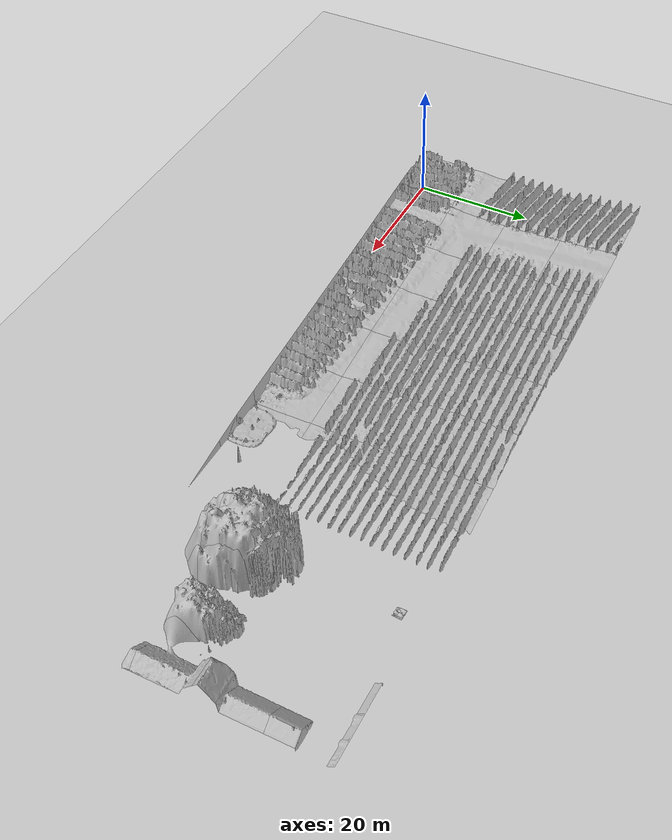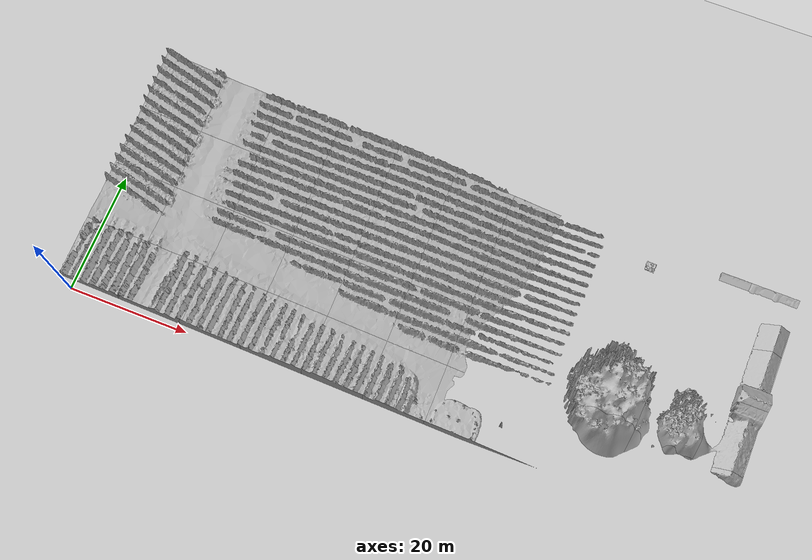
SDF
<?xml version="1.0" ?>
<sdf version="1.10">
    <world name="vineyard">
        <physics name="1ms" type="ignored">
            <max_step_size>0.001</max_step_size>
            <real_time_factor>1.0</real_time_factor>
        </physics>
        <plugin filename="gz-sim-physics-system" name="gz::sim::systems::Physics">
        </plugin>
        <plugin filename="gz-sim-user-commands-system" name="gz::sim::systems::UserCommands">
        </plugin>
        <plugin filename="gz-sim-scene-broadcaster-system" name="gz::sim::systems::SceneBroadcaster">
        </plugin>
        <plugin filename="gz-sim-contact-system" name="gz::sim::systems::Contact">
        </plugin>
        <scene>
            <ambient>0.6 0.6 0.6 1.0</ambient>
            <background>0.9 0.9 1.0 1.0</background>
        </scene>
        <light type="directional" name="sun">
            <cast_shadows>true</cast_shadows>
            <pose>0 0 10 0 0 0</pose>
            <diffuse>1.0 1.0 0.95 1.0</diffuse>
            <specular>0.5 0.5 0.45 1.0</specular>
            <attenuation>
                <range>1000</range>
                <constant>0.9</constant>
                <linear>0.01</linear>
                <quadratic>0.001</quadratic>
            </attenuation>
            <direction>0 -1 -1</direction>
        </light>
        <spherical_coordinates>
            <surface_model>EARTH_WGS84</surface_model>
            <world_frame_orientation>ENU</world_frame_orientation>
            <latitude_deg>49.04254</latitude_deg>
            <longitude_deg>3.941031</longitude_deg>
            <elevation>0</elevation>
            <heading_deg>0</heading_deg>
        </spherical_coordinates>
        <model name="ground_plane">
            <static>1</static>
            <link name="link">
                <collision name="collision">
                    <geometry>
                        <plane>
                            <normal>0 0 1</normal>
                            <size>100 100</size>
                        </plane>
                    </geometry>
                    <max_contacts>10</max_contacts>
                </collision>
                <visual name="visual">
                    <geometry>
                        <plane>
                            <normal>0 0 1</normal>
                            <size>100 100</size>
                        </plane>
                    </geometry>
                    <material>
                        <ambient>0.8 0.8 0.8 1</ambient>
                        <diffuse>0.8 0.8 0.8 1</diffuse>
                        <specular>0.8 0.8 0.8 1</specular>
                    </material>
                </visual>
            </link>
        </model>
        <include>
            <uri>model://map_0_0</uri>
            <pose>0 0 0 0 0 0</pose>
        </include>
        <include>
            <uri>model://map_10_10</uri>
            <pose>10 10 0 0 0 0</pose>
        </include>
        <include>
            <uri>model://map_10_30</uri>
            <pose>30 10 0 0 0 0</pose>
        </include>
        <include>
            <uri>model://map_20_80</uri>
            <pose>80 20 0 0 0 0</pose>
        </include>
        <include>
            <uri>model://map_30_0</uri>
            <pose>0 30 0 0 0 0</pose>
        </include>
        <include>
            <uri>model://map_30_70</uri>
            <pose>70 30 0 0 0 0</pose>
        </include>
        <include>
            <uri>model://map_0_30</uri>
            <pose>30 0 0 0 0 0</pose>
        </include>
        <include>
            <uri>model://map_0_40</uri>
            <pose>40 0 0 0 0 0</pose>
        </include>
        <include>
            <uri>model://map_0_50</uri>
            <pose>50 0 0 0 0 0</pose>
        </include>
        <include>
            <uri>model://map_0_60</uri>
            <pose>60 0 0 0 0 0</pose>
        </include>
        <include>
            <uri>model://map_0_70</uri>
            <pose>70 0 0 0 0 0</pose>
        </include>
        <include>
            <uri>model://map_0_80</uri>
            <pose>80 0 0 0 0 0</pose>
        </include>
        <include>
            <uri>model://map_0_90</uri>
            <pose>90 0 0 0 0 0</pose>
        </include>
        <include>
            <uri>model://map_0_100</uri>
            <pose>100 0 0 0 0 0</pose>
        </include>
        <include>
            <uri>model://map_20_20</uri>
            <pose>20 20 0 0 0 0</pose>
        </include>
        <include>
            <uri>model://map_10_50</uri>
            <pose>50 10 0 0 0 0</pose>
        </include>
        <include>
            <uri>model://map_30_60</uri>
            <pose>60 30 0 0 0 0</pose>
        </include>
        <include>
            <uri>model://map_30_100</uri>
            <pose>100 30 0 0 0 0</pose>
        </include>
        <include>
            <uri>model://map_30_20</uri>
            <pose>20 30 0 0 0 0</pose>
        </include>
        <include>
            <uri>model://map_20_70</uri>
            <pose>70 20 0 0 0 0</pose>
        </include>
        <include>
            <uri>model://map_10_80</uri>
            <pose>80 10 0 0 0 0</pose>
        </include>
        <include>
            <uri>model://map_30_30</uri>
            <pose>30 30 0 0 0 0</pose>
        </include>
        <include>
            <uri>model://map_10_20</uri>
            <pose>20 10 0 0 0 0</pose>
        </include>
        <include>
            <uri>model://map_20_50</uri>
            <pose>50 20 0 0 0 0</pose>
        </include>
        <include>
            <uri>model://map_30_50</uri>
            <pose>50 30 0 0 0 0</pose>
        </include>
        <include>
            <uri>model://map_20_0</uri>
            <pose>0 20 0 0 0 0</pose>
        </include>
        <include>
            <uri>model://map_30_40</uri>
            <pose>40 30 0 0 0 0</pose>
        </include>
        <include>
            <uri>model://map_20_30</uri>
            <pose>30 20 0 0 0 0</pose>
        </include>
        <include>
            <uri>model://map_20_60</uri>
            <pose>60 20 0 0 0 0</pose>
        </include>
        <include>
            <uri>model://map_20_10</uri>
            <pose>10 20 0 0 0 0</pose>
        </include>
        <include>
            <uri>model://map_30_10</uri>
            <pose>10 30 0 0 0 0</pose>
        </include>
        <include>
            <uri>model://map_30_80</uri>
            <pose>80 30 0 0 0 0</pose>
        </include>
        <include>
            <uri>model://map_20_100</uri>
            <pose>100 20 0 0 0 0</pose>
        </include>
        <include>
            <uri>model://map_20_40</uri>
            <pose>40 20 0 0 0 0</pose>
        </include>
        <include>
            <uri>model://map_30_90</uri>
            <pose>90 30 0 0 0 0</pose>
        </include>
        <include>
            <uri>model://map_0_10</uri>
            <pose>10 0 0 0 0 0</pose>
        </include>
        <include>
            <uri>model://map_0_20</uri>
            <pose>20 0 0 0 0 0</pose>
        </include>
        <include>
            <uri>model://map_10_40</uri>
            <pose>40 10 0 0 0 0</pose>
        </include>
        <include>
            <uri>model://map_10_0</uri>
            <pose>0 10 0 0 0 0</pose>
        </include>
        <include>
            <uri>model://map_10_60</uri>
            <pose>60 10 0 0 0 0</pose>
        </include>
        <include>
            <uri>model://map_10_70</uri>
            <pose>70 10 0 0 0 0</pose>
        </include>
        <include>
            <uri>model://map_10_100</uri>
            <pose>100 10 0 0 0 0</pose>
        </include>
        <include>
            <uri>model://map_20_90</uri>
            <pose>90 20 0 0 0 0</pose>
        </include>
        <include>
            <uri>model://map_10_90</uri>
            <pose>90 10 0 0 0 0</pose>
        </include>
    </world>
</sdf>

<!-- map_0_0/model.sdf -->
<sdf version="1.10">
    <model name="map_0_0">
        <link name="map_0_0_link">
            <visual name="map_0_0_visual">
                <geometry>
                    <mesh>
                        <uri>meshes/visual/map_0_0.obj</uri>
                    </mesh>
                </geometry>
            </visual>
            <collision name="map_0_0_collision">
                <surface>
                    <friction>
                        <ode>
                            <mu>2.316343837943928</mu>
                            <mu2>2.316343837943928</mu2>
                        </ode>
                        <bullet>
                            <friction>2.316343837943928</friction>
                            <friction2>2.316343837943928</friction2>
                        </bullet>
                    </friction>
                </surface>
                <geometry>
                    <mesh>
                        <uri>meshes/visual/map_0_0.obj</uri>
                    </mesh>
                </geometry>
            </collision>
        </link>
        <static>True</static>
    </model>
</sdf>

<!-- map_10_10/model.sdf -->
<sdf version="1.10">
    <model name="map_10_10">
        <link name="map_10_10_link">
            <visual name="map_10_10_visual">
                <geometry>
                    <mesh>
                        <uri>meshes/visual/map_10_10.obj</uri>
                    </mesh>
                </geometry>
            </visual>
            <collision name="map_10_10_collision">
                <surface>
                    <friction>
                        <ode>
                            <mu>2.316343837943928</mu>
                            <mu2>2.316343837943928</mu2>
                        </ode>
                        <bullet>
                            <friction>2.316343837943928</friction>
                            <friction2>2.316343837943928</friction2>
                        </bullet>
                    </friction>
                </surface>
                <geometry>
                    <mesh>
                        <uri>meshes/visual/map_10_10.obj</uri>
                    </mesh>
                </geometry>
            </collision>
        </link>
        <static>True</static>
    </model>
</sdf>

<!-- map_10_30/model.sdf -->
<sdf version="1.10">
    <model name="map_10_30">
        <link name="map_10_30_link">
            <visual name="map_10_30_visual">
                <geometry>
                    <mesh>
                        <uri>meshes/visual/map_10_30.obj</uri>
                    </mesh>
                </geometry>
            </visual>
            <collision name="map_10_30_collision">
                <surface>
                    <friction>
                        <ode>
                            <mu>2.316343837943928</mu>
                            <mu2>2.316343837943928</mu2>
                        </ode>
                        <bullet>
                            <friction>2.316343837943928</friction>
                            <friction2>2.316343837943928</friction2>
                        </bullet>
                    </friction>
                </surface>
                <geometry>
                    <mesh>
                        <uri>meshes/visual/map_10_30.obj</uri>
                    </mesh>
                </geometry>
            </collision>
        </link>
        <static>True</static>
    </model>
</sdf>

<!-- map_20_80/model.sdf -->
<sdf version="1.10">
    <model name="map_20_80">
        <link name="map_20_80_link">
            <visual name="map_20_80_visual">
                <geometry>
                    <mesh>
                        <uri>meshes/visual/map_20_80.obj</uri>
                    </mesh>
                </geometry>
            </visual>
            <collision name="map_20_80_collision">
                <surface>
                    <friction>
                        <ode>
                            <mu>2.316343837943928</mu>
                            <mu2>2.316343837943928</mu2>
                        </ode>
                        <bullet>
                            <friction>2.316343837943928</friction>
                            <friction2>2.316343837943928</friction2>
                        </bullet>
                    </friction>
                </surface>
                <geometry>
                    <mesh>
                        <uri>meshes/visual/map_20_80.obj</uri>
                    </mesh>
                </geometry>
            </collision>
        </link>
        <static>True</static>
    </model>
</sdf>

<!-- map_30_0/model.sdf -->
<sdf version="1.10">
    <model name="map_30_0">
        <link name="map_30_0_link">
            <visual name="map_30_0_visual">
                <geometry>
                    <mesh>
                        <uri>meshes/visual/map_30_0.obj</uri>
                    </mesh>
                </geometry>
            </visual>
            <collision name="map_30_0_collision">
                <surface>
                    <friction>
                        <ode>
                            <mu>2.316343837943928</mu>
                            <mu2>2.316343837943928</mu2>
                        </ode>
                        <bullet>
                            <friction>2.316343837943928</friction>
                            <friction2>2.316343837943928</friction2>
                        </bullet>
                    </friction>
                </surface>
                <geometry>
                    <mesh>
                        <uri>meshes/visual/map_30_0.obj</uri>
                    </mesh>
                </geometry>
            </collision>
        </link>
        <static>True</static>
    </model>
</sdf>

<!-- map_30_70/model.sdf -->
<sdf version="1.10">
    <model name="map_30_70">
        <link name="map_30_70_link">
            <visual name="map_30_70_visual">
                <geometry>
                    <mesh>
                        <uri>meshes/visual/map_30_70.obj</uri>
                    </mesh>
                </geometry>
            </visual>
            <collision name="map_30_70_collision">
                <surface>
                    <friction>
                        <ode>
                            <mu>2.316343837943928</mu>
                            <mu2>2.316343837943928</mu2>
                        </ode>
                        <bullet>
                            <friction>2.316343837943928</friction>
                            <friction2>2.316343837943928</friction2>
                        </bullet>
                    </friction>
                </surface>
                <geometry>
                    <mesh>
                        <uri>meshes/visual/map_30_70.obj</uri>
                    </mesh>
                </geometry>
            </collision>
        </link>
        <static>True</static>
    </model>
</sdf>

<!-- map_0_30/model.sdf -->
<sdf version="1.10">
    <model name="map_0_30">
        <link name="map_0_30_link">
            <visual name="map_0_30_visual">
                <geometry>
                    <mesh>
                        <uri>meshes/visual/map_0_30.obj</uri>
                    </mesh>
                </geometry>
            </visual>
            <collision name="map_0_30_collision">
                <surface>
                    <friction>
                        <ode>
                            <mu>2.316343837943928</mu>
                            <mu2>2.316343837943928</mu2>
                        </ode>
                        <bullet>
                            <friction>2.316343837943928</friction>
                            <friction2>2.316343837943928</friction2>
                        </bullet>
                    </friction>
                </surface>
                <geometry>
                    <mesh>
                        <uri>meshes/visual/map_0_30.obj</uri>
                    </mesh>
                </geometry>
            </collision>
        </link>
        <static>True</static>
    </model>
</sdf>

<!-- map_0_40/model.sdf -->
<sdf version="1.10">
    <model name="map_0_40">
        <link name="map_0_40_link">
            <visual name="map_0_40_visual">
                <geometry>
                    <mesh>
                        <uri>meshes/visual/map_0_40.obj</uri>
                    </mesh>
                </geometry>
            </visual>
            <collision name="map_0_40_collision">
                <surface>
                    <friction>
                        <ode>
                            <mu>2.316343837943928</mu>
                            <mu2>2.316343837943928</mu2>
                        </ode>
                        <bullet>
                            <friction>2.316343837943928</friction>
                            <friction2>2.316343837943928</friction2>
                        </bullet>
                    </friction>
                </surface>
                <geometry>
                    <mesh>
                        <uri>meshes/visual/map_0_40.obj</uri>
                    </mesh>
                </geometry>
            </collision>
        </link>
        <static>True</static>
    </model>
</sdf>

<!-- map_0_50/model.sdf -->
<sdf version="1.10">
    <model name="map_0_50">
        <link name="map_0_50_link">
            <visual name="map_0_50_visual">
                <geometry>
                    <mesh>
                        <uri>meshes/visual/map_0_50.obj</uri>
                    </mesh>
                </geometry>
            </visual>
            <collision name="map_0_50_collision">
                <surface>
                    <friction>
                        <ode>
                            <mu>2.316343837943928</mu>
                            <mu2>2.316343837943928</mu2>
                        </ode>
                        <bullet>
                            <friction>2.316343837943928</friction>
                            <friction2>2.316343837943928</friction2>
                        </bullet>
                    </friction>
                </surface>
                <geometry>
                    <mesh>
                        <uri>meshes/visual/map_0_50.obj</uri>
                    </mesh>
                </geometry>
            </collision>
        </link>
        <static>True</static>
    </model>
</sdf>

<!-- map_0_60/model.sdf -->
<sdf version="1.10">
    <model name="map_0_60">
        <link name="map_0_60_link">
            <visual name="map_0_60_visual">
                <geometry>
                    <mesh>
                        <uri>meshes/visual/map_0_60.obj</uri>
                    </mesh>
                </geometry>
            </visual>
            <collision name="map_0_60_collision">
                <surface>
                    <friction>
                        <ode>
                            <mu>2.316343837943928</mu>
                            <mu2>2.316343837943928</mu2>
                        </ode>
                        <bullet>
                            <friction>2.316343837943928</friction>
                            <friction2>2.316343837943928</friction2>
                        </bullet>
                    </friction>
                </surface>
                <geometry>
                    <mesh>
                        <uri>meshes/visual/map_0_60.obj</uri>
                    </mesh>
                </geometry>
            </collision>
        </link>
        <static>True</static>
    </model>
</sdf>

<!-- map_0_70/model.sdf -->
<sdf version="1.10">
    <model name="map_0_70">
        <link name="map_0_70_link">
            <visual name="map_0_70_visual">
                <geometry>
                    <mesh>
                        <uri>meshes/visual/map_0_70.obj</uri>
                    </mesh>
                </geometry>
            </visual>
            <collision name="map_0_70_collision">
                <surface>
                    <friction>
                        <ode>
                            <mu>2.316343837943928</mu>
                            <mu2>2.316343837943928</mu2>
                        </ode>
                        <bullet>
                            <friction>2.316343837943928</friction>
                            <friction2>2.316343837943928</friction2>
                        </bullet>
                    </friction>
                </surface>
                <geometry>
                    <mesh>
                        <uri>meshes/visual/map_0_70.obj</uri>
                    </mesh>
                </geometry>
            </collision>
        </link>
        <static>True</static>
    </model>
</sdf>

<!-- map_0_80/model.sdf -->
<sdf version="1.10">
    <model name="map_0_80">
        <link name="map_0_80_link">
            <visual name="map_0_80_visual">
                <geometry>
                    <mesh>
                        <uri>meshes/visual/map_0_80.obj</uri>
                    </mesh>
                </geometry>
            </visual>
            <collision name="map_0_80_collision">
                <surface>
                    <friction>
                        <ode>
                            <mu>2.316343837943928</mu>
                            <mu2>2.316343837943928</mu2>
                        </ode>
                        <bullet>
                            <friction>2.316343837943928</friction>
                            <friction2>2.316343837943928</friction2>
                        </bullet>
                    </friction>
                </surface>
                <geometry>
                    <mesh>
                        <uri>meshes/visual/map_0_80.obj</uri>
                    </mesh>
                </geometry>
            </collision>
        </link>
        <static>True</static>
    </model>
</sdf>

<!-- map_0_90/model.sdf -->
<sdf version="1.10">
    <model name="map_0_90">
        <link name="map_0_90_link">
            <visual name="map_0_90_visual">
                <geometry>
                    <mesh>
                        <uri>meshes/visual/map_0_90.obj</uri>
                    </mesh>
                </geometry>
            </visual>
            <collision name="map_0_90_collision">
                <surface>
                    <friction>
                        <ode>
                            <mu>2.316343837943928</mu>
                            <mu2>2.316343837943928</mu2>
                        </ode>
                        <bullet>
                            <friction>2.316343837943928</friction>
                            <friction2>2.316343837943928</friction2>
                        </bullet>
                    </friction>
                </surface>
                <geometry>
                    <mesh>
                        <uri>meshes/visual/map_0_90.obj</uri>
                    </mesh>
                </geometry>
            </collision>
        </link>
        <static>True</static>
    </model>
</sdf>

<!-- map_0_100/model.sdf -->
<sdf version="1.10">
    <model name="map_0_100">
        <link name="map_0_100_link">
            <visual name="map_0_100_visual">
                <geometry>
                    <mesh>
                        <uri>meshes/visual/map_0_100.obj</uri>
                    </mesh>
                </geometry>
            </visual>
            <collision name="map_0_100_collision">
                <surface>
                    <friction>
                        <ode>
                            <mu>2.316343837943928</mu>
                            <mu2>2.316343837943928</mu2>
                        </ode>
                        <bullet>
                            <friction>2.316343837943928</friction>
                            <friction2>2.316343837943928</friction2>
                        </bullet>
                    </friction>
                </surface>
                <geometry>
                    <mesh>
                        <uri>meshes/visual/map_0_100.obj</uri>
                    </mesh>
                </geometry>
            </collision>
        </link>
        <static>True</static>
    </model>
</sdf>

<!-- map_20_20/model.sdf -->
<sdf version="1.10">
    <model name="map_20_20">
        <link name="map_20_20_link">
            <visual name="map_20_20_visual">
                <geometry>
                    <mesh>
                        <uri>meshes/visual/map_20_20.obj</uri>
                    </mesh>
                </geometry>
            </visual>
            <collision name="map_20_20_collision">
                <surface>
                    <friction>
                        <ode>
                            <mu>2.316343837943928</mu>
                            <mu2>2.316343837943928</mu2>
                        </ode>
                        <bullet>
                            <friction>2.316343837943928</friction>
                            <friction2>2.316343837943928</friction2>
                        </bullet>
                    </friction>
                </surface>
                <geometry>
                    <mesh>
                        <uri>meshes/visual/map_20_20.obj</uri>
                    </mesh>
                </geometry>
            </collision>
        </link>
        <static>True</static>
    </model>
</sdf>

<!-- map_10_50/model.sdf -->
<sdf version="1.10">
    <model name="map_10_50">
        <link name="map_10_50_link">
            <visual name="map_10_50_visual">
                <geometry>
                    <mesh>
                        <uri>meshes/visual/map_10_50.obj</uri>
                    </mesh>
                </geometry>
            </visual>
            <collision name="map_10_50_collision">
                <surface>
                    <friction>
                        <ode>
                            <mu>2.316343837943928</mu>
                            <mu2>2.316343837943928</mu2>
                        </ode>
                        <bullet>
                            <friction>2.316343837943928</friction>
                            <friction2>2.316343837943928</friction2>
                        </bullet>
                    </friction>
                </surface>
                <geometry>
                    <mesh>
                        <uri>meshes/visual/map_10_50.obj</uri>
                    </mesh>
                </geometry>
            </collision>
        </link>
        <static>True</static>
    </model>
</sdf>

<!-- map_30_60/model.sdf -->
<sdf version="1.10">
    <model name="map_30_60">
        <link name="map_30_60_link">
            <visual name="map_30_60_visual">
                <geometry>
                    <mesh>
                        <uri>meshes/visual/map_30_60.obj</uri>
                    </mesh>
                </geometry>
            </visual>
            <collision name="map_30_60_collision">
                <surface>
                    <friction>
                        <ode>
                            <mu>2.316343837943928</mu>
                            <mu2>2.316343837943928</mu2>
                        </ode>
                        <bullet>
                            <friction>2.316343837943928</friction>
                            <friction2>2.316343837943928</friction2>
                        </bullet>
                    </friction>
                </surface>
                <geometry>
                    <mesh>
                        <uri>meshes/visual/map_30_60.obj</uri>
                    </mesh>
                </geometry>
            </collision>
        </link>
        <static>True</static>
    </model>
</sdf>

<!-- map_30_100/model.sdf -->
<sdf version="1.10">
    <model name="map_30_100">
        <link name="map_30_100_link">
            <visual name="map_30_100_visual">
                <geometry>
                    <mesh>
                        <uri>meshes/visual/map_30_100.obj</uri>
                    </mesh>
                </geometry>
            </visual>
            <collision name="map_30_100_collision">
                <surface>
                    <friction>
                        <ode>
                            <mu>2.316343837943928</mu>
                            <mu2>2.316343837943928</mu2>
                        </ode>
                        <bullet>
                            <friction>2.316343837943928</friction>
                            <friction2>2.316343837943928</friction2>
                        </bullet>
                    </friction>
                </surface>
                <geometry>
                    <mesh>
                        <uri>meshes/visual/map_30_100.obj</uri>
                    </mesh>
                </geometry>
            </collision>
        </link>
        <static>True</static>
    </model>
</sdf>

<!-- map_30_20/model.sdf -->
<sdf version="1.10">
    <model name="map_30_20">
        <link name="map_30_20_link">
            <visual name="map_30_20_visual">
                <geometry>
                    <mesh>
                        <uri>meshes/visual/map_30_20.obj</uri>
                    </mesh>
                </geometry>
            </visual>
            <collision name="map_30_20_collision">
                <surface>
                    <friction>
                        <ode>
                            <mu>2.316343837943928</mu>
                            <mu2>2.316343837943928</mu2>
                        </ode>
                        <bullet>
                            <friction>2.316343837943928</friction>
                            <friction2>2.316343837943928</friction2>
                        </bullet>
                    </friction>
                </surface>
                <geometry>
                    <mesh>
                        <uri>meshes/visual/map_30_20.obj</uri>
                    </mesh>
                </geometry>
            </collision>
        </link>
        <static>True</static>
    </model>
</sdf>

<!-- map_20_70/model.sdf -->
<sdf version="1.10">
    <model name="map_20_70">
        <link name="map_20_70_link">
            <visual name="map_20_70_visual">
                <geometry>
                    <mesh>
                        <uri>meshes/visual/map_20_70.obj</uri>
                    </mesh>
                </geometry>
            </visual>
            <collision name="map_20_70_collision">
                <surface>
                    <friction>
                        <ode>
                            <mu>2.316343837943928</mu>
                            <mu2>2.316343837943928</mu2>
                        </ode>
                        <bullet>
                            <friction>2.316343837943928</friction>
                            <friction2>2.316343837943928</friction2>
                        </bullet>
                    </friction>
                </surface>
                <geometry>
                    <mesh>
                        <uri>meshes/visual/map_20_70.obj</uri>
                    </mesh>
                </geometry>
            </collision>
        </link>
        <static>True</static>
    </model>
</sdf>

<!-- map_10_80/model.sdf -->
<sdf version="1.10">
    <model name="map_10_80">
        <link name="map_10_80_link">
            <visual name="map_10_80_visual">
                <geometry>
                    <mesh>
                        <uri>meshes/visual/map_10_80.obj</uri>
                    </mesh>
                </geometry>
            </visual>
            <collision name="map_10_80_collision">
                <surface>
                    <friction>
                        <ode>
                            <mu>2.316343837943928</mu>
                            <mu2>2.316343837943928</mu2>
                        </ode>
                        <bullet>
                            <friction>2.316343837943928</friction>
                            <friction2>2.316343837943928</friction2>
                        </bullet>
                    </friction>
                </surface>
                <geometry>
                    <mesh>
                        <uri>meshes/visual/map_10_80.obj</uri>
                    </mesh>
                </geometry>
            </collision>
        </link>
        <static>True</static>
    </model>
</sdf>

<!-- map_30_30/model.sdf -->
<sdf version="1.10">
    <model name="map_30_30">
        <link name="map_30_30_link">
            <visual name="map_30_30_visual">
                <geometry>
                    <mesh>
                        <uri>meshes/visual/map_30_30.obj</uri>
                    </mesh>
                </geometry>
            </visual>
            <collision name="map_30_30_collision">
                <surface>
                    <friction>
                        <ode>
                            <mu>2.316343837943928</mu>
                            <mu2>2.316343837943928</mu2>
                        </ode>
                        <bullet>
                            <friction>2.316343837943928</friction>
                            <friction2>2.316343837943928</friction2>
                        </bullet>
                    </friction>
                </surface>
                <geometry>
                    <mesh>
                        <uri>meshes/visual/map_30_30.obj</uri>
                    </mesh>
                </geometry>
            </collision>
        </link>
        <static>True</static>
    </model>
</sdf>

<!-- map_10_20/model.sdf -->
<sdf version="1.10">
    <model name="map_10_20">
        <link name="map_10_20_link">
            <visual name="map_10_20_visual">
                <geometry>
                    <mesh>
                        <uri>meshes/visual/map_10_20.obj</uri>
                    </mesh>
                </geometry>
            </visual>
            <collision name="map_10_20_collision">
                <surface>
                    <friction>
                        <ode>
                            <mu>2.316343837943928</mu>
                            <mu2>2.316343837943928</mu2>
                        </ode>
                        <bullet>
                            <friction>2.316343837943928</friction>
                            <friction2>2.316343837943928</friction2>
                        </bullet>
                    </friction>
                </surface>
                <geometry>
                    <mesh>
                        <uri>meshes/visual/map_10_20.obj</uri>
                    </mesh>
                </geometry>
            </collision>
        </link>
        <static>True</static>
    </model>
</sdf>

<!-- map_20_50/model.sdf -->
<sdf version="1.10">
    <model name="map_20_50">
        <link name="map_20_50_link">
            <visual name="map_20_50_visual">
                <geometry>
                    <mesh>
                        <uri>meshes/visual/map_20_50.obj</uri>
                    </mesh>
                </geometry>
            </visual>
            <collision name="map_20_50_collision">
                <surface>
                    <friction>
                        <ode>
                            <mu>2.316343837943928</mu>
                            <mu2>2.316343837943928</mu2>
                        </ode>
                        <bullet>
                            <friction>2.316343837943928</friction>
                            <friction2>2.316343837943928</friction2>
                        </bullet>
                    </friction>
                </surface>
                <geometry>
                    <mesh>
                        <uri>meshes/visual/map_20_50.obj</uri>
                    </mesh>
                </geometry>
            </collision>
        </link>
        <static>True</static>
    </model>
</sdf>

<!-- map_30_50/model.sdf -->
<sdf version="1.10">
    <model name="map_30_50">
        <link name="map_30_50_link">
            <visual name="map_30_50_visual">
                <geometry>
                    <mesh>
                        <uri>meshes/visual/map_30_50.obj</uri>
                    </mesh>
                </geometry>
            </visual>
            <collision name="map_30_50_collision">
                <surface>
                    <friction>
                        <ode>
                            <mu>2.316343837943928</mu>
                            <mu2>2.316343837943928</mu2>
                        </ode>
                        <bullet>
                            <friction>2.316343837943928</friction>
                            <friction2>2.316343837943928</friction2>
                        </bullet>
                    </friction>
                </surface>
                <geometry>
                    <mesh>
                        <uri>meshes/visual/map_30_50.obj</uri>
                    </mesh>
                </geometry>
            </collision>
        </link>
        <static>True</static>
    </model>
</sdf>

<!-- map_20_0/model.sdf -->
<sdf version="1.10">
    <model name="map_20_0">
        <link name="map_20_0_link">
            <visual name="map_20_0_visual">
                <geometry>
                    <mesh>
                        <uri>meshes/visual/map_20_0.obj</uri>
                    </mesh>
                </geometry>
            </visual>
            <collision name="map_20_0_collision">
                <surface>
                    <friction>
                        <ode>
                            <mu>2.316343837943928</mu>
                            <mu2>2.316343837943928</mu2>
                        </ode>
                        <bullet>
                            <friction>2.316343837943928</friction>
                            <friction2>2.316343837943928</friction2>
                        </bullet>
                    </friction>
                </surface>
                <geometry>
                    <mesh>
                        <uri>meshes/visual/map_20_0.obj</uri>
                    </mesh>
                </geometry>
            </collision>
        </link>
        <static>True</static>
    </model>
</sdf>

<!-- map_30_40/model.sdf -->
<sdf version="1.10">
    <model name="map_30_40">
        <link name="map_30_40_link">
            <visual name="map_30_40_visual">
                <geometry>
                    <mesh>
                        <uri>meshes/visual/map_30_40.obj</uri>
                    </mesh>
                </geometry>
            </visual>
            <collision name="map_30_40_collision">
                <surface>
                    <friction>
                        <ode>
                            <mu>2.316343837943928</mu>
                            <mu2>2.316343837943928</mu2>
                        </ode>
                        <bullet>
                            <friction>2.316343837943928</friction>
                            <friction2>2.316343837943928</friction2>
                        </bullet>
                    </friction>
                </surface>
                <geometry>
                    <mesh>
                        <uri>meshes/visual/map_30_40.obj</uri>
                    </mesh>
                </geometry>
            </collision>
        </link>
        <static>True</static>
    </model>
</sdf>

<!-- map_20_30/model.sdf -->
<sdf version="1.10">
    <model name="map_20_30">
        <link name="map_20_30_link">
            <visual name="map_20_30_visual">
                <geometry>
                    <mesh>
                        <uri>meshes/visual/map_20_30.obj</uri>
                    </mesh>
                </geometry>
            </visual>
            <collision name="map_20_30_collision">
                <surface>
                    <friction>
                        <ode>
                            <mu>2.316343837943928</mu>
                            <mu2>2.316343837943928</mu2>
                        </ode>
                        <bullet>
                            <friction>2.316343837943928</friction>
                            <friction2>2.316343837943928</friction2>
                        </bullet>
                    </friction>
                </surface>
                <geometry>
                    <mesh>
                        <uri>meshes/visual/map_20_30.obj</uri>
                    </mesh>
                </geometry>
            </collision>
        </link>
        <static>True</static>
    </model>
</sdf>

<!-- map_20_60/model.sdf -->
<sdf version="1.10">
    <model name="map_20_60">
        <link name="map_20_60_link">
            <visual name="map_20_60_visual">
                <geometry>
                    <mesh>
                        <uri>meshes/visual/map_20_60.obj</uri>
                    </mesh>
                </geometry>
            </visual>
            <collision name="map_20_60_collision">
                <surface>
                    <friction>
                        <ode>
                            <mu>2.316343837943928</mu>
                            <mu2>2.316343837943928</mu2>
                        </ode>
                        <bullet>
                            <friction>2.316343837943928</friction>
                            <friction2>2.316343837943928</friction2>
                        </bullet>
                    </friction>
                </surface>
                <geometry>
                    <mesh>
                        <uri>meshes/visual/map_20_60.obj</uri>
                    </mesh>
                </geometry>
            </collision>
        </link>
        <static>True</static>
    </model>
</sdf>

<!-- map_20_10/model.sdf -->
<sdf version="1.10">
    <model name="map_20_10">
        <link name="map_20_10_link">
            <visual name="map_20_10_visual">
                <geometry>
                    <mesh>
                        <uri>meshes/visual/map_20_10.obj</uri>
                    </mesh>
                </geometry>
            </visual>
            <collision name="map_20_10_collision">
                <surface>
                    <friction>
                        <ode>
                            <mu>2.316343837943928</mu>
                            <mu2>2.316343837943928</mu2>
                        </ode>
                        <bullet>
                            <friction>2.316343837943928</friction>
                            <friction2>2.316343837943928</friction2>
                        </bullet>
                    </friction>
                </surface>
                <geometry>
                    <mesh>
                        <uri>meshes/visual/map_20_10.obj</uri>
                    </mesh>
                </geometry>
            </collision>
        </link>
        <static>True</static>
    </model>
</sdf>

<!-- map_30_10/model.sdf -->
<sdf version="1.10">
    <model name="map_30_10">
        <link name="map_30_10_link">
            <visual name="map_30_10_visual">
                <geometry>
                    <mesh>
                        <uri>meshes/visual/map_30_10.obj</uri>
                    </mesh>
                </geometry>
            </visual>
            <collision name="map_30_10_collision">
                <surface>
                    <friction>
                        <ode>
                            <mu>2.316343837943928</mu>
                            <mu2>2.316343837943928</mu2>
                        </ode>
                        <bullet>
                            <friction>2.316343837943928</friction>
                            <friction2>2.316343837943928</friction2>
                        </bullet>
                    </friction>
                </surface>
                <geometry>
                    <mesh>
                        <uri>meshes/visual/map_30_10.obj</uri>
                    </mesh>
                </geometry>
            </collision>
        </link>
        <static>True</static>
    </model>
</sdf>

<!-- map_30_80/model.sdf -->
<sdf version="1.10">
    <model name="map_30_80">
        <link name="map_30_80_link">
            <visual name="map_30_80_visual">
                <geometry>
                    <mesh>
                        <uri>meshes/visual/map_30_80.obj</uri>
                    </mesh>
                </geometry>
            </visual>
            <collision name="map_30_80_collision">
                <surface>
                    <friction>
                        <ode>
                            <mu>2.316343837943928</mu>
                            <mu2>2.316343837943928</mu2>
                        </ode>
                        <bullet>
                            <friction>2.316343837943928</friction>
                            <friction2>2.316343837943928</friction2>
                        </bullet>
                    </friction>
                </surface>
                <geometry>
                    <mesh>
                        <uri>meshes/visual/map_30_80.obj</uri>
                    </mesh>
                </geometry>
            </collision>
        </link>
        <static>True</static>
    </model>
</sdf>

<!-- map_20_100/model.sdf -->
<sdf version="1.10">
    <model name="map_20_100">
        <link name="map_20_100_link">
            <visual name="map_20_100_visual">
                <geometry>
                    <mesh>
                        <uri>meshes/visual/map_20_100.obj</uri>
                    </mesh>
                </geometry>
            </visual>
            <collision name="map_20_100_collision">
                <surface>
                    <friction>
                        <ode>
                            <mu>2.316343837943928</mu>
                            <mu2>2.316343837943928</mu2>
                        </ode>
                        <bullet>
                            <friction>2.316343837943928</friction>
                            <friction2>2.316343837943928</friction2>
                        </bullet>
                    </friction>
                </surface>
                <geometry>
                    <mesh>
                        <uri>meshes/visual/map_20_100.obj</uri>
                    </mesh>
                </geometry>
            </collision>
        </link>
        <static>True</static>
    </model>
</sdf>

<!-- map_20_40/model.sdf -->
<sdf version="1.10">
    <model name="map_20_40">
        <link name="map_20_40_link">
            <visual name="map_20_40_visual">
                <geometry>
                    <mesh>
                        <uri>meshes/visual/map_20_40.obj</uri>
                    </mesh>
                </geometry>
            </visual>
            <collision name="map_20_40_collision">
                <surface>
                    <friction>
                        <ode>
                            <mu>2.316343837943928</mu>
                            <mu2>2.316343837943928</mu2>
                        </ode>
                        <bullet>
                            <friction>2.316343837943928</friction>
                            <friction2>2.316343837943928</friction2>
                        </bullet>
                    </friction>
                </surface>
                <geometry>
                    <mesh>
                        <uri>meshes/visual/map_20_40.obj</uri>
                    </mesh>
                </geometry>
            </collision>
        </link>
        <static>True</static>
    </model>
</sdf>

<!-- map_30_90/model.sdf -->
<sdf version="1.10">
    <model name="map_30_90">
        <link name="map_30_90_link">
            <visual name="map_30_90_visual">
                <geometry>
                    <mesh>
                        <uri>meshes/visual/map_30_90.obj</uri>
                    </mesh>
                </geometry>
            </visual>
            <collision name="map_30_90_collision">
                <surface>
                    <friction>
                        <ode>
                            <mu>2.316343837943928</mu>
                            <mu2>2.316343837943928</mu2>
                        </ode>
                        <bullet>
                            <friction>2.316343837943928</friction>
                            <friction2>2.316343837943928</friction2>
                        </bullet>
                    </friction>
                </surface>
                <geometry>
                    <mesh>
                        <uri>meshes/visual/map_30_90.obj</uri>
                    </mesh>
                </geometry>
            </collision>
        </link>
        <static>True</static>
    </model>
</sdf>

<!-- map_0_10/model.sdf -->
<sdf version="1.10">
    <model name="map_0_10">
        <link name="map_0_10_link">
            <visual name="map_0_10_visual">
                <geometry>
                    <mesh>
                        <uri>meshes/visual/map_0_10.obj</uri>
                    </mesh>
                </geometry>
            </visual>
            <collision name="map_0_10_collision">
                <surface>
                    <friction>
                        <ode>
                            <mu>2.316343837943928</mu>
                            <mu2>2.316343837943928</mu2>
                        </ode>
                        <bullet>
                            <friction>2.316343837943928</friction>
                            <friction2>2.316343837943928</friction2>
                        </bullet>
                    </friction>
                </surface>
                <geometry>
                    <mesh>
                        <uri>meshes/visual/map_0_10.obj</uri>
                    </mesh>
                </geometry>
            </collision>
        </link>
        <static>True</static>
    </model>
</sdf>

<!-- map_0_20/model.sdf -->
<sdf version="1.10">
    <model name="map_0_20">
        <link name="map_0_20_link">
            <visual name="map_0_20_visual">
                <geometry>
                    <mesh>
                        <uri>meshes/visual/map_0_20.obj</uri>
                    </mesh>
                </geometry>
            </visual>
            <collision name="map_0_20_collision">
                <surface>
                    <friction>
                        <ode>
                            <mu>2.316343837943928</mu>
                            <mu2>2.316343837943928</mu2>
                        </ode>
                        <bullet>
                            <friction>2.316343837943928</friction>
                            <friction2>2.316343837943928</friction2>
                        </bullet>
                    </friction>
                </surface>
                <geometry>
                    <mesh>
                        <uri>meshes/visual/map_0_20.obj</uri>
                    </mesh>
                </geometry>
            </collision>
        </link>
        <static>True</static>
    </model>
</sdf>

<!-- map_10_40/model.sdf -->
<sdf version="1.10">
    <model name="map_10_40">
        <link name="map_10_40_link">
            <visual name="map_10_40_visual">
                <geometry>
                    <mesh>
                        <uri>meshes/visual/map_10_40.obj</uri>
                    </mesh>
                </geometry>
            </visual>
            <collision name="map_10_40_collision">
                <surface>
                    <friction>
                        <ode>
                            <mu>2.316343837943928</mu>
                            <mu2>2.316343837943928</mu2>
                        </ode>
                        <bullet>
                            <friction>2.316343837943928</friction>
                            <friction2>2.316343837943928</friction2>
                        </bullet>
                    </friction>
                </surface>
                <geometry>
                    <mesh>
                        <uri>meshes/visual/map_10_40.obj</uri>
                    </mesh>
                </geometry>
            </collision>
        </link>
        <static>True</static>
    </model>
</sdf>

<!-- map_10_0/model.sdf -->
<sdf version="1.10">
    <model name="map_10_0">
        <link name="map_10_0_link">
            <visual name="map_10_0_visual">
                <geometry>
                    <mesh>
                        <uri>meshes/visual/map_10_0.obj</uri>
                    </mesh>
                </geometry>
            </visual>
            <collision name="map_10_0_collision">
                <surface>
                    <friction>
                        <ode>
                            <mu>2.316343837943928</mu>
                            <mu2>2.316343837943928</mu2>
                        </ode>
                        <bullet>
                            <friction>2.316343837943928</friction>
                            <friction2>2.316343837943928</friction2>
                        </bullet>
                    </friction>
                </surface>
                <geometry>
                    <mesh>
                        <uri>meshes/visual/map_10_0.obj</uri>
                    </mesh>
                </geometry>
            </collision>
        </link>
        <static>True</static>
    </model>
</sdf>

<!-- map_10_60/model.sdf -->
<sdf version="1.10">
    <model name="map_10_60">
        <link name="map_10_60_link">
            <visual name="map_10_60_visual">
                <geometry>
                    <mesh>
                        <uri>meshes/visual/map_10_60.obj</uri>
                    </mesh>
                </geometry>
            </visual>
            <collision name="map_10_60_collision">
                <surface>
                    <friction>
                        <ode>
                            <mu>2.316343837943928</mu>
                            <mu2>2.316343837943928</mu2>
                        </ode>
                        <bullet>
                            <friction>2.316343837943928</friction>
                            <friction2>2.316343837943928</friction2>
                        </bullet>
                    </friction>
                </surface>
                <geometry>
                    <mesh>
                        <uri>meshes/visual/map_10_60.obj</uri>
                    </mesh>
                </geometry>
            </collision>
        </link>
        <static>True</static>
    </model>
</sdf>

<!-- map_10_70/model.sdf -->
<sdf version="1.10">
    <model name="map_10_70">
        <link name="map_10_70_link">
            <visual name="map_10_70_visual">
                <geometry>
                    <mesh>
                        <uri>meshes/visual/map_10_70.obj</uri>
                    </mesh>
                </geometry>
            </visual>
            <collision name="map_10_70_collision">
                <surface>
                    <friction>
                        <ode>
                            <mu>2.316343837943928</mu>
                            <mu2>2.316343837943928</mu2>
                        </ode>
                        <bullet>
                            <friction>2.316343837943928</friction>
                            <friction2>2.316343837943928</friction2>
                        </bullet>
                    </friction>
                </surface>
                <geometry>
                    <mesh>
                        <uri>meshes/visual/map_10_70.obj</uri>
                    </mesh>
                </geometry>
            </collision>
        </link>
        <static>True</static>
    </model>
</sdf>

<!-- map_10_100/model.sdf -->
<sdf version="1.10">
    <model name="map_10_100">
        <link name="map_10_100_link">
            <visual name="map_10_100_visual">
                <geometry>
                    <mesh>
                        <uri>meshes/visual/map_10_100.obj</uri>
                    </mesh>
                </geometry>
            </visual>
            <collision name="map_10_100_collision">
                <surface>
                    <friction>
                        <ode>
                            <mu>2.316343837943928</mu>
                            <mu2>2.316343837943928</mu2>
                        </ode>
                        <bullet>
                            <friction>2.316343837943928</friction>
                            <friction2>2.316343837943928</friction2>
                        </bullet>
                    </friction>
                </surface>
                <geometry>
                    <mesh>
                        <uri>meshes/visual/map_10_100.obj</uri>
                    </mesh>
                </geometry>
            </collision>
        </link>
        <static>True</static>
    </model>
</sdf>

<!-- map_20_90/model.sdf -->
<sdf version="1.10">
    <model name="map_20_90">
        <link name="map_20_90_link">
            <visual name="map_20_90_visual">
                <geometry>
                    <mesh>
                        <uri>meshes/visual/map_20_90.obj</uri>
                    </mesh>
                </geometry>
            </visual>
            <collision name="map_20_90_collision">
                <surface>
                    <friction>
                        <ode>
                            <mu>2.316343837943928</mu>
                            <mu2>2.316343837943928</mu2>
                        </ode>
                        <bullet>
                            <friction>2.316343837943928</friction>
                            <friction2>2.316343837943928</friction2>
                        </bullet>
                    </friction>
                </surface>
                <geometry>
                    <mesh>
                        <uri>meshes/visual/map_20_90.obj</uri>
                    </mesh>
                </geometry>
            </collision>
        </link>
        <static>True</static>
    </model>
</sdf>

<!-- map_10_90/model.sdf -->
<sdf version="1.10">
    <model name="map_10_90">
        <link name="map_10_90_link">
            <visual name="map_10_90_visual">
                <geometry>
                    <mesh>
                        <uri>meshes/visual/map_10_90.obj</uri>
                    </mesh>
                </geometry>
            </visual>
            <collision name="map_10_90_collision">
                <surface>
                    <friction>
                        <ode>
                            <mu>2.316343837943928</mu>
                            <mu2>2.316343837943928</mu2>
                        </ode>
                        <bullet>
                            <friction>2.316343837943928</friction>
                            <friction2>2.316343837943928</friction2>
                        </bullet>
                    </friction>
                </surface>
                <geometry>
                    <mesh>
                        <uri>meshes/visual/map_10_90.obj</uri>
                    </mesh>
                </geometry>
            </collision>
        </link>
        <static>True</static>
    </model>
</sdf>
